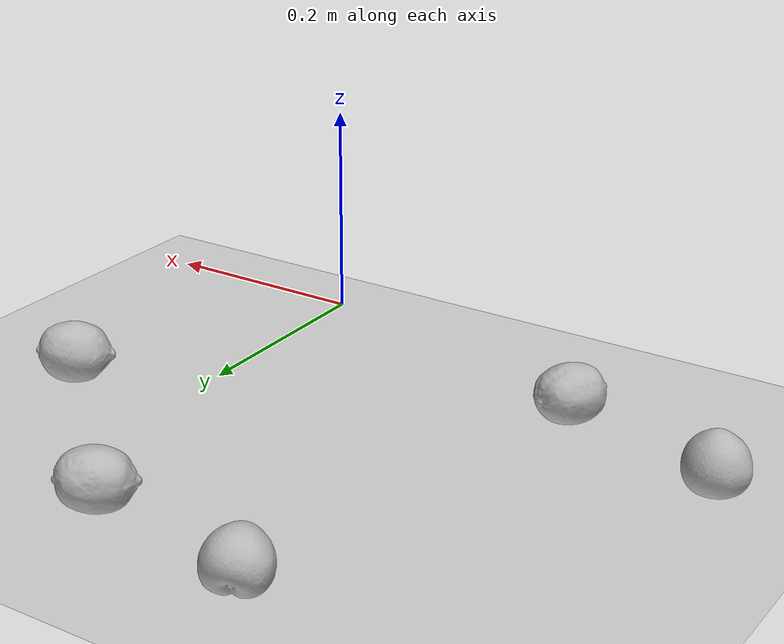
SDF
<sdf version="1.10">
 <world name="default">
  <plugin name="gz::sim::systems::Physics" filename="gz-sim-physics-system">
   <engine><filename>libgz-physics-bullet-featherstone-plugin.so</filename></engine>
  </plugin>
  <plugin name="gz::sim::systems::UserCommands" filename="gz-sim-user-commands-system"/>
  <plugin name="gz::sim::systems::SceneBroadcaster" filename="gz-sim-scene-broadcaster-system"/>
  <plugin name="gz::sim::systems::Sensors" filename="gz-sim-sensors-system">
   <render_engine>ogre2</render_engine>
  </plugin>
  <plugin name="gz::sim::systems::Imu" filename="gz-sim-imu-system"/>
  <gravity>0 0 -9.8000000000000007</gravity>
  <scene>
   <shadows>false</shadows>
   <ambient>0.400000006 0.400000006 0.400000006 1</ambient>
   <background>0.699999988 0.699999988 0.699999988 1</background>
  </scene>
  <magnetic_field>5.5644999999999998e-06 2.2875799999999999e-05 -4.2388400000000002e-05</magnetic_field>
  <atmosphere type="adiabatic"/>
  <physics type="ode">
   <max_step_size>0.001</max_step_size>
   <real_time_factor>1</real_time_factor>
   <real_time_update_rate>1000</real_time_update_rate>
  </physics>
  <model name="ground_plane">
   <static>true</static>
   <link name="link">
    <collision name="collision">
     <geometry><plane><normal>0 0 1</normal><size>1 1</size></plane></geometry>
     <surface><friction><torsional><coefficient>0</coefficient></torsional></friction></surface>
    </collision>
    <visual name="visual">
     <geometry><plane><normal>0 0 1</normal><size>100 100</size></plane></geometry>
     <material>
      <ambient>0.800000012 0.800000012 0.800000012 1</ambient>
      <diffuse>0.800000012 0.800000012 0.800000012 1</diffuse>
      <specular>0.800000012 0.800000012 0.800000012 1</specular>
     </material>
    </visual>
    <inertial>
     <mass>1</mass>
     <inertia><ixx>1</ixx><ixy>0</ixy><ixz>0</ixz><iyy>1</iyy><iyz>0</iyz><izz>1</izz></inertia>
    </inertial>
   </link>
  </model>
  <model name="lemon">
   <link name="link">
    <visual name="visual">
     <geometry>
      <mesh><uri>file:///home/jr/ros2_ws/src/moveo/moveo_gazebo/models/HarV Fruits/Lemon/lemon.dae</uri></mesh>
     </geometry>
    </visual>
    <collision name="collision">
     <geometry>
      <mesh><uri>file:///home/jr/ros2_ws/src/moveo/moveo_gazebo/models/HarV Fruits/Lemon/lemon.dae</uri></mesh>
     </geometry>
    </collision>
    <inertial>
     <mass>1</mass>
     <inertia><ixx>1</ixx><ixy>0</ixy><ixz>0</ixz><iyy>1</iyy><iyz>0</iyz><izz>1</izz></inertia>
    </inertial>
   </link>
   <pose>-0.072805419564247131 0.44045406579971313 0.0062480242922902107 0.23758749785374636 0.0028412235908833136 -0.048757745268510989</pose>
   <static>false</static>
  </model>
  <model name="plum">
   <link name="link">
    <visual name="visual">
     <geometry>
      <mesh><uri>file:///home/jr/ros2_ws/src/moveo/moveo_gazebo/models/HarV Fruits/Plum/plum.dae</uri></mesh>
     </geometry>
    </visual>
    <collision name="collision">
     <geometry>
      <mesh><uri>file:///home/jr/ros2_ws/src/moveo/moveo_gazebo/models/HarV Fruits/Plum/plum.dae</uri></mesh>
     </geometry>
    </collision>
    <inertial>
     <mass>1</mass>
     <inertia><ixx>1</ixx><ixy>0</ixy><ixz>0</ixz><iyy>1</iyy><iyz>0</iyz><izz>1</izz></inertia>
    </inertial>
   </link>
   <pose>-0.46122029423713684 0.14769768714904785 0.010682550258934498 -0.016115542883935026 0.0046593771006140979 0.014066217349138347</pose>
   <static>false</static>
  </model>
  <model name="lemon_0">
   <link name="link">
    <visual name="visual">
     <geometry>
      <mesh><uri>file:///home/jr/ros2_ws/src/moveo/moveo_gazebo/models/HarV Fruits/Lemon/lemon.dae</uri></mesh>
     </geometry>
    </visual>
    <collision name="collision">
     <geometry>
      <mesh><uri>file:///home/jr/ros2_ws/src/moveo/moveo_gazebo/models/HarV Fruits/Lemon/lemon.dae</uri></mesh>
     </geometry>
    </collision>
    <inertial>
     <mass>1</mass>
     <inertia><ixx>1</ixx><ixy>0</ixy><ixz>0</ixz><iyy>1</iyy><iyz>0</iyz><izz>1</izz></inertia>
    </inertial>
   </link>
   <pose>0.062253192067146301 0.32119366526603699 0.017206238582730293 1.1768157845358016 0.56100190515685744 0.30452499811883232</pose>
   <static>false</static>
  </model>
  <model name="lemon_1">
   <link name="link">
    <visual name="visual">
     <geometry>
      <mesh><uri>file:///home/jr/ros2_ws/src/moveo/moveo_gazebo/models/HarV Fruits/Lemon/lemon.dae</uri></mesh>
     </geometry>
    </visual>
    <collision name="collision">
     <geometry>
      <mesh><uri>file:///home/jr/ros2_ws/src/moveo/moveo_gazebo/models/HarV Fruits/Lemon/lemon.dae</uri></mesh>
     </geometry>
    </collision>
    <inertial>
     <mass>1</mass>
     <inertia><ixx>1</ixx><ixy>0</ixy><ixz>0</ixz><iyy>1</iyy><iyz>0</iyz><izz>1</izz></inertia>
    </inertial>
   </link>
   <pose>-0.31524384021759033 0.11660812050104141 0.0026098943781107664 0.4294677149473225 0.29354950081904613 0.35463243347410434</pose>
   <static>false</static>
  </model>
  <model name="plum_0">
   <link name="link">
    <visual name="visual">
     <geometry>
      <mesh><uri>file:///home/jr/ros2_ws/src/moveo/moveo_gazebo/models/HarV Fruits/Plum/plum.dae</uri></mesh>
     </geometry>
    </visual>
    <collision name="collision">
     <geometry>
      <mesh><uri>file:///home/jr/ros2_ws/src/moveo/moveo_gazebo/models/HarV Fruits/Plum/plum.dae</uri></mesh>
     </geometry>
    </collision>
    <inertial>
     <mass>1</mass>
     <inertia><ixx>1</ixx><ixy>0</ixy><ixz>0</ixz><iyy>1</iyy><iyz>0</iyz><izz>1</izz></inertia>
    </inertial>
   </link>
   <pose>-0.24652327597141266 0.49496617913246155 0.0057292790152132511 0.95511771833196946 0.27631661844315963 0.14563942574133262</pose>
   <static>false</static>
  </model>
  <light name="sun" type="directional">
   <pose>0 0 10 0 0 0</pose>
   <intensity>1</intensity>
   <direction>-0.5 0.10000000000000001 -0.90000000000000002</direction>
   <diffuse>0.800000012 0.800000012 0.800000012 1</diffuse>
   <specular>0.200000003 0.200000003 0.200000003 1</specular>
   <attenuation>
    <range>1000</range>
    <linear>0.01</linear>
    <constant>0.90000000000000002</constant>
    <quadratic>0.001</quadratic>
   </attenuation>
   <spot><inner_angle>0</inner_angle><outer_angle>0</outer_angle><falloff>0</falloff></spot>
  </light>
 </world>
</sdf>
